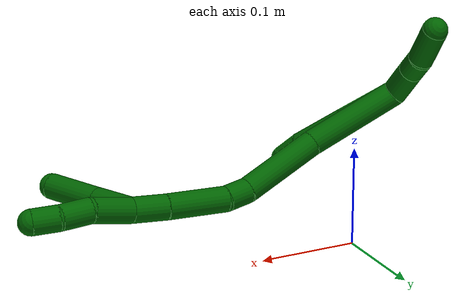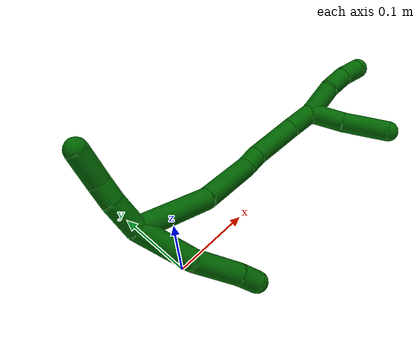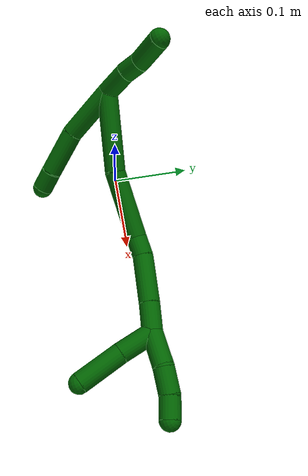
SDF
<sdf version="1.7">
 <world name="default">
  <model name="6">
   <static>0</static>
   <link name="6">
    <collision name="collision-cylinder-e_1_2_8">
     <pose>0.012563 -0.000265 -0.031586 3.1332 0.378534 3.0978</pose>
     <geometry><cylinder><radius>0.0125</radius><length>0.067988</length></cylinder></geometry>
     <surface>
      <friction><ode><mu>1.16</mu><mu2>1.16</mu2><slip1>0</slip1><slip2>0</slip2></ode></friction>
      <contact><ode><kp>1e+06</kp><kd>1</kd><max_vel>0</max_vel><min_depth>0.001</min_depth></ode></contact>
     </surface>
    </collision>
    <visual name="visual-cylinder-e_1_2_8">
     <pose>0.012563 -0.000265 -0.031586 3.1332 0.378534 3.0978</pose>
     <geometry><cylinder><radius>0.0125</radius><length>0.067988</length></cylinder></geometry>
     <material><ambient>0 0.392157 0.003922 1</ambient></material>
    </visual>
    <collision name="collision-cylinder-e_2_8_9">
     <pose>0.040498 0.002118 -0.086628 -3.02919 0.577274 -2.76707</pose>
     <geometry><cylinder><radius>0.0125</radius><length>0.056337</length></cylinder></geometry>
     <surface>
      <friction><ode><mu>1.16</mu><mu2>1.16</mu2><slip1>0</slip1><slip2>0</slip2></ode></friction>
      <contact><ode><kp>1e+06</kp><kd>1</kd><max_vel>0</max_vel><min_depth>0.001</min_depth></ode></contact>
     </surface>
    </collision>
    <visual name="visual-cylinder-e_2_8_9">
     <pose>0.040498 0.002118 -0.086628 -3.02919 0.577274 -2.76707</pose>
     <geometry><cylinder><radius>0.0125</radius><length>0.056337</length></cylinder></geometry>
     <material><ambient>0 0.392157 0.003922 1</ambient></material>
    </visual>
    <collision name="collision-cylinder-e_3_9_6">
     <pose>0.061715 0.007098 -0.121272 -2.93602 0.472667 -2.33226</pose>
     <geometry><cylinder><radius>0.0125</radius><length>0.025675</length></cylinder></geometry>
     <surface>
      <friction><ode><mu>1.16</mu><mu2>1.16</mu2><slip1>0</slip1><slip2>0</slip2></ode></friction>
      <contact><ode><kp>1e+06</kp><kd>1</kd><max_vel>0</max_vel><min_depth>0.001</min_depth></ode></contact>
     </surface>
    </collision>
    <visual name="visual-cylinder-e_3_9_6">
     <pose>0.061715 0.007098 -0.121272 -2.93602 0.472667 -2.33226</pose>
     <geometry><cylinder><radius>0.0125</radius><length>0.025675</length></cylinder></geometry>
     <material><ambient>0 0.392157 0.003922 1</ambient></material>
    </visual>
    <collision name="collision-cylinder-e_1_2_10">
     <pose>-0.001428 -0.003268 0.01824 0.177294 -0.07693 -0.006841</pose>
     <geometry><cylinder><radius>0.0125</radius><length>0.037171</length></cylinder></geometry>
     <surface>
      <friction><ode><mu>1.16</mu><mu2>1.16</mu2><slip1>0</slip1><slip2>0</slip2></ode></friction>
      <contact><ode><kp>1e+06</kp><kd>1</kd><max_vel>0</max_vel><min_depth>0.001</min_depth></ode></contact>
     </surface>
    </collision>
    <visual name="visual-cylinder-e_1_2_10">
     <pose>-0.001428 -0.003268 0.01824 0.177294 -0.07693 -0.006841</pose>
     <geometry><cylinder><radius>0.0125</radius><length>0.037171</length></cylinder></geometry>
     <material><ambient>0 0.392157 0.003922 1</ambient></material>
    </visual>
    <collision name="collision-cylinder-e_2_10_11">
     <pose>-0.002523 -0.007283 0.047992 0.064749 0.02892 0.000937</pose>
     <geometry><cylinder><radius>0.0125</radius><length>0.023081</length></cylinder></geometry>
     <surface>
      <friction><ode><mu>1.16</mu><mu2>1.16</mu2><slip1>0</slip1><slip2>0</slip2></ode></friction>
      <contact><ode><kp>1e+06</kp><kd>1</kd><max_vel>0</max_vel><min_depth>0.001</min_depth></ode></contact>
     </surface>
    </collision>
    <visual name="visual-cylinder-e_2_10_11">
     <pose>-0.002523 -0.007283 0.047992 0.064749 0.02892 0.000937</pose>
     <geometry><cylinder><radius>0.0125</radius><length>0.023081</length></cylinder></geometry>
     <material><ambient>0 0.392157 0.003922 1</ambient></material>
    </visual>
    <collision name="collision-cylinder-e_3_11_5">
     <pose>-0.001963 -0.013675 0.078557 0.288071 0.011385 0.001651</pose>
     <geometry><cylinder><radius>0.0125</radius><length>0.039748</length></cylinder></geometry>
     <surface>
      <friction><ode><mu>1.16</mu><mu2>1.16</mu2><slip1>0</slip1><slip2>0</slip2></ode></friction>
      <contact><ode><kp>1e+06</kp><kd>1</kd><max_vel>0</max_vel><min_depth>0.001</min_depth></ode></contact>
     </surface>
    </collision>
    <visual name="visual-cylinder-e_3_11_5">
     <pose>-0.001963 -0.013675 0.078557 0.288071 0.011385 0.001651</pose>
     <geometry><cylinder><radius>0.0125</radius><length>0.039748</length></cylinder></geometry>
     <material><ambient>0 0.392157 0.003922 1</ambient></material>
    </visual>
    <collision name="collision-cylinder-e_1_2_12">
     <pose>0.042408 0.017812 -0.015675 -2.29247 1.0607 -1.82809</pose>
     <geometry><cylinder><radius>0.0125</radius><length>0.097188</length></cylinder></geometry>
     <surface>
      <friction><ode><mu>1.16</mu><mu2>1.16</mu2><slip1>0</slip1><slip2>0</slip2></ode></friction>
      <contact><ode><kp>1e+06</kp><kd>1</kd><max_vel>0</max_vel><min_depth>0.001</min_depth></ode></contact>
     </surface>
    </collision>
    <visual name="visual-cylinder-e_1_2_12">
     <pose>0.042408 0.017812 -0.015675 -2.29247 1.0607 -1.82809</pose>
     <geometry><cylinder><radius>0.0125</radius><length>0.097188</length></cylinder></geometry>
     <material><ambient>0 0.392157 0.003922 1</ambient></material>
    </visual>
    <collision name="collision-cylinder-e_2_12_13">
     <pose>0.121045 0.055508 -0.037083 -1.85151 1.05181 -1.31415</pose>
     <geometry><cylinder><radius>0.0125</radius><length>0.083445</length></cylinder></geometry>
     <surface>
      <friction><ode><mu>1.16</mu><mu2>1.16</mu2><slip1>0</slip1><slip2>0</slip2></ode></friction>
      <contact><ode><kp>1e+06</kp><kd>1</kd><max_vel>0</max_vel><min_depth>0.001</min_depth></ode></contact>
     </surface>
    </collision>
    <visual name="visual-cylinder-e_2_12_13">
     <pose>0.121045 0.055508 -0.037083 -1.85151 1.05181 -1.31415</pose>
     <geometry><cylinder><radius>0.0125</radius><length>0.083445</length></cylinder></geometry>
     <material><ambient>0 0.392157 0.003922 1</ambient></material>
    </visual>
    <collision name="collision-cylinder-e_3_13_14">
     <pose>0.169003 0.079045 -0.042572 -1.50389 1.26823 -1.205</pose>
     <geometry><cylinder><radius>0.0125</radius><length>0.024575</length></cylinder></geometry>
     <surface>
      <friction><ode><mu>1.16</mu><mu2>1.16</mu2><slip1>0</slip1><slip2>0</slip2></ode></friction>
      <contact><ode><kp>1e+06</kp><kd>1</kd><max_vel>0</max_vel><min_depth>0.001</min_depth></ode></contact>
     </surface>
    </collision>
    <visual name="visual-cylinder-e_3_13_14">
     <pose>0.169003 0.079045 -0.042572 -1.50389 1.26823 -1.205</pose>
     <geometry><cylinder><radius>0.0125</radius><length>0.024575</length></cylinder></geometry>
     <material><ambient>0 0.392157 0.003922 1</ambient></material>
    </visual>
    <collision name="collision-cylinder-e_4_14_15">
     <pose>0.210682 0.084256 -0.043431 -2.18757 1.50711 -2.13464</pose>
     <geometry><cylinder><radius>0.0125</radius><length>0.060021</length></cylinder></geometry>
     <surface>
      <friction><ode><mu>1.16</mu><mu2>1.16</mu2><slip1>0</slip1><slip2>0</slip2></ode></friction>
      <contact><ode><kp>1e+06</kp><kd>1</kd><max_vel>0</max_vel><min_depth>0.001</min_depth></ode></contact>
     </surface>
    </collision>
    <visual name="visual-cylinder-e_4_14_15">
     <pose>0.210682 0.084256 -0.043431 -2.18757 1.50711 -2.13464</pose>
     <geometry><cylinder><radius>0.0125</radius><length>0.060021</length></cylinder></geometry>
     <material><ambient>0 0.392157 0.003922 1</ambient></material>
    </visual>
    <collision name="collision-cylinder-e_5_15_1">
     <pose>0.257996 0.085948 -0.045372 -2.98273 1.52208 -2.97483</pose>
     <geometry><cylinder><radius>0.0125</radius><length>0.034771</length></cylinder></geometry>
     <surface>
      <friction><ode><mu>1.16</mu><mu2>1.16</mu2><slip1>0</slip1><slip2>0</slip2></ode></friction>
      <contact><ode><kp>1e+06</kp><kd>1</kd><max_vel>0</max_vel><min_depth>0.001</min_depth></ode></contact>
     </surface>
    </collision>
    <visual name="visual-cylinder-e_5_15_1">
     <pose>0.257996 0.085948 -0.045372 -2.98273 1.52208 -2.97483</pose>
     <geometry><cylinder><radius>0.0125</radius><length>0.034771</length></cylinder></geometry>
     <material><ambient>0 0.392157 0.003922 1</ambient></material>
    </visual>
    <collision name="collision-cylinder-e_1_1_16">
     <pose>0.284839 0.074354 -0.061743 2.49492 0.453152 1.20521</pose>
     <geometry><cylinder><radius>0.0125</radius><length>0.0433</length></cylinder></geometry>
     <surface>
      <friction><ode><mu>1.16</mu><mu2>1.16</mu2><slip1>0</slip1><slip2>0</slip2></ode></friction>
      <contact><ode><kp>1e+06</kp><kd>1</kd><max_vel>0</max_vel><min_depth>0.001</min_depth></ode></contact>
     </surface>
    </collision>
    <visual name="visual-cylinder-e_1_1_16">
     <pose>0.284839 0.074354 -0.061743 2.49492 0.453152 1.20521</pose>
     <geometry><cylinder><radius>0.0125</radius><length>0.0433</length></cylinder></geometry>
     <material><ambient>0 0.392157 0.003922 1</ambient></material>
    </visual>
    <collision name="collision-cylinder-e_2_16_4">
     <pose>0.30856 0.046973 -0.096143 2.44901 0.52635 1.28275</pose>
     <geometry><cylinder><radius>0.0125</radius><length>0.0567</length></cylinder></geometry>
     <surface>
      <friction><ode><mu>1.16</mu><mu2>1.16</mu2><slip1>0</slip1><slip2>0</slip2></ode></friction>
      <contact><ode><kp>1e+06</kp><kd>1</kd><max_vel>0</max_vel><min_depth>0.001</min_depth></ode></contact>
     </surface>
    </collision>
    <visual name="visual-cylinder-e_2_16_4">
     <pose>0.30856 0.046973 -0.096143 2.44901 0.52635 1.28275</pose>
     <geometry><cylinder><radius>0.0125</radius><length>0.0567</length></cylinder></geometry>
     <material><ambient>0 0.392157 0.003922 1</ambient></material>
    </visual>
    <collision name="collision-cylinder-e_1_1_17">
     <pose>0.296445 0.08638 -0.041913 -0.069315 1.36936 -0.056598</pose>
     <geometry><cylinder><radius>0.0125</radius><length>0.043038</length></cylinder></geometry>
     <surface>
      <friction><ode><mu>1.16</mu><mu2>1.16</mu2><slip1>0</slip1><slip2>0</slip2></ode></friction>
      <contact><ode><kp>1e+06</kp><kd>1</kd><max_vel>0</max_vel><min_depth>0.001</min_depth></ode></contact>
     </surface>
    </collision>
    <visual name="visual-cylinder-e_1_1_17">
     <pose>0.296445 0.08638 -0.041913 -0.069315 1.36936 -0.056598</pose>
     <geometry><cylinder><radius>0.0125</radius><length>0.043038</length></cylinder></geometry>
     <material><ambient>0 0.392157 0.003922 1</ambient></material>
    </visual>
    <collision name="collision-cylinder-e_2_17_18">
     <pose>0.332657 0.089157 -0.037917 -1.69092 1.40725 -1.52694</pose>
     <geometry><cylinder><radius>0.0125</radius><length>0.030667</length></cylinder></geometry>
     <surface>
      <friction><ode><mu>1.16</mu><mu2>1.16</mu2><slip1>0</slip1><slip2>0</slip2></ode></friction>
      <contact><ode><kp>1e+06</kp><kd>1</kd><max_vel>0</max_vel><min_depth>0.001</min_depth></ode></contact>
     </surface>
    </collision>
    <visual name="visual-cylinder-e_2_17_18">
     <pose>0.332657 0.089157 -0.037917 -1.69092 1.40725 -1.52694</pose>
     <geometry><cylinder><radius>0.0125</radius><length>0.030667</length></cylinder></geometry>
     <material><ambient>0 0.392157 0.003922 1</ambient></material>
    </visual>
    <collision name="collision-cylinder-e_3_18_3">
     <pose>0.360714 0.091938 -0.040593 -3.0149 1.38756 -2.98935</pose>
     <geometry><cylinder><radius>0.0125</radius><length>0.026295</length></cylinder></geometry>
     <surface>
      <friction><ode><mu>1.16</mu><mu2>1.16</mu2><slip1>0</slip1><slip2>0</slip2></ode></friction>
      <contact><ode><kp>1e+06</kp><kd>1</kd><max_vel>0</max_vel><min_depth>0.001</min_depth></ode></contact>
     </surface>
    </collision>
    <visual name="visual-cylinder-e_3_18_3">
     <pose>0.360714 0.091938 -0.040593 -3.0149 1.38756 -2.98935</pose>
     <geometry><cylinder><radius>0.0125</radius><length>0.026295</length></cylinder></geometry>
     <material><ambient>0 0.392157 0.003922 1</ambient></material>
    </visual>
    <collision name="collision-sphere-3">
     <pose>0.373641 0.092241 -0.042969 0 -0 0</pose>
     <geometry><sphere><radius>0.0125</radius></sphere></geometry>
     <surface>
      <friction><ode><mu>1.16</mu><mu2>1.16</mu2><slip1>0</slip1><slip2>0</slip2></ode></friction>
      <contact><ode><kp>1e+06</kp><kd>1</kd><max_vel>0</max_vel><min_depth>0.001</min_depth></ode></contact>
     </surface>
    </collision>
    <visual name="visual-sphere-3">
     <pose>0.373641 0.092241 -0.042969 0 -0 0</pose>
     <geometry><sphere><radius>0.0125</radius></sphere></geometry>
     <material><ambient>0 0.392157 0.003922 1</ambient></material>
    </visual>
    <collision name="collision-sphere-11">
     <pose>-0.002189 -0.008029 0.059503 0 -0 0</pose>
     <geometry><sphere><radius>0.0125</radius></sphere></geometry>
     <surface>
      <friction><ode><mu>1.16</mu><mu2>1.16</mu2><slip1>0</slip1><slip2>0</slip2></ode></friction>
      <contact><ode><kp>1e+06</kp><kd>1</kd><max_vel>0</max_vel><min_depth>0.001</min_depth></ode></contact>
     </surface>
    </collision>
    <visual name="visual-sphere-11">
     <pose>-0.002189 -0.008029 0.059503 0 -0 0</pose>
     <geometry><sphere><radius>0.0125</radius></sphere></geometry>
     <material><ambient>0 0.392157 0.003922 1</ambient></material>
    </visual>
    <collision name="collision-sphere-10">
     <pose>-0.002857 -0.006536 0.03648 0 -0 0</pose>
     <geometry><sphere><radius>0.0125</radius></sphere></geometry>
     <surface>
      <friction><ode><mu>1.16</mu><mu2>1.16</mu2><slip1>0</slip1><slip2>0</slip2></ode></friction>
      <contact><ode><kp>1e+06</kp><kd>1</kd><max_vel>0</max_vel><min_depth>0.001</min_depth></ode></contact>
     </surface>
    </collision>
    <visual name="visual-sphere-10">
     <pose>-0.002857 -0.006536 0.03648 0 -0 0</pose>
     <geometry><sphere><radius>0.0125</radius></sphere></geometry>
     <material><ambient>0 0.392157 0.003922 1</ambient></material>
    </visual>
    <collision name="collision-sphere-6">
     <pose>0.06756 0.009432 -0.132461 0 -0 0</pose>
     <geometry><sphere><radius>0.0125</radius></sphere></geometry>
     <surface>
      <friction><ode><mu>1.16</mu><mu2>1.16</mu2><slip1>0</slip1><slip2>0</slip2></ode></friction>
      <contact><ode><kp>1e+06</kp><kd>1</kd><max_vel>0</max_vel><min_depth>0.001</min_depth></ode></contact>
     </surface>
    </collision>
    <visual name="visual-sphere-6">
     <pose>0.06756 0.009432 -0.132461 0 -0 0</pose>
     <geometry><sphere><radius>0.0125</radius></sphere></geometry>
     <material><ambient>0 0.392157 0.003922 1</ambient></material>
    </visual>
    <collision name="collision-sphere-9">
     <pose>0.055871 0.004765 -0.110082 0 -0 0</pose>
     <geometry><sphere><radius>0.0125</radius></sphere></geometry>
     <surface>
      <friction><ode><mu>1.16</mu><mu2>1.16</mu2><slip1>0</slip1><slip2>0</slip2></ode></friction>
      <contact><ode><kp>1e+06</kp><kd>1</kd><max_vel>0</max_vel><min_depth>0.001</min_depth></ode></contact>
     </surface>
    </collision>
    <visual name="visual-sphere-9">
     <pose>0.055871 0.004765 -0.110082 0 -0 0</pose>
     <geometry><sphere><radius>0.0125</radius></sphere></geometry>
     <material><ambient>0 0.392157 0.003922 1</ambient></material>
    </visual>
    <collision name="collision-sphere-2">
     <geometry><sphere><radius>0.0125</radius></sphere></geometry>
     <surface>
      <friction><ode><mu>1.16</mu><mu2>1.16</mu2><slip1>0</slip1><slip2>0</slip2></ode></friction>
      <contact><ode><kp>1e+06</kp><kd>1</kd><max_vel>0</max_vel><min_depth>0.001</min_depth></ode></contact>
     </surface>
    </collision>
    <visual name="visual-sphere-2">
     <geometry><sphere><radius>0.0125</radius></sphere></geometry>
     <material><ambient>0 0.392157 0.003922 1</ambient></material>
    </visual>
    <collision name="collision-sphere-8">
     <pose>0.025126 -0.00053 -0.063173 0 -0 0</pose>
     <geometry><sphere><radius>0.0125</radius></sphere></geometry>
     <surface>
      <friction><ode><mu>1.16</mu><mu2>1.16</mu2><slip1>0</slip1><slip2>0</slip2></ode></friction>
      <contact><ode><kp>1e+06</kp><kd>1</kd><max_vel>0</max_vel><min_depth>0.001</min_depth></ode></contact>
     </surface>
    </collision>
    <visual name="visual-sphere-8">
     <pose>0.025126 -0.00053 -0.063173 0 -0 0</pose>
     <geometry><sphere><radius>0.0125</radius></sphere></geometry>
     <material><ambient>0 0.392157 0.003922 1</ambient></material>
    </visual>
    <collision name="collision-sphere-5">
     <pose>-0.001737 -0.019321 0.097611 0 -0 0</pose>
     <geometry><sphere><radius>0.0125</radius></sphere></geometry>
     <surface>
      <friction><ode><mu>1.16</mu><mu2>1.16</mu2><slip1>0</slip1><slip2>0</slip2></ode></friction>
      <contact><ode><kp>1e+06</kp><kd>1</kd><max_vel>0</max_vel><min_depth>0.001</min_depth></ode></contact>
     </surface>
    </collision>
    <visual name="visual-sphere-5">
     <pose>-0.001737 -0.019321 0.097611 0 -0 0</pose>
     <geometry><sphere><radius>0.0125</radius></sphere></geometry>
     <material><ambient>0 0.392157 0.003922 1</ambient></material>
    </visual>
    <collision name="collision-sphere-12">
     <pose>0.084816 0.035623 -0.03135 0 -0 0</pose>
     <geometry><sphere><radius>0.0125</radius></sphere></geometry>
     <surface>
      <friction><ode><mu>1.16</mu><mu2>1.16</mu2><slip1>0</slip1><slip2>0</slip2></ode></friction>
      <contact><ode><kp>1e+06</kp><kd>1</kd><max_vel>0</max_vel><min_depth>0.001</min_depth></ode></contact>
     </surface>
    </collision>
    <visual name="visual-sphere-12">
     <pose>0.084816 0.035623 -0.03135 0 -0 0</pose>
     <geometry><sphere><radius>0.0125</radius></sphere></geometry>
     <material><ambient>0 0.392157 0.003922 1</ambient></material>
    </visual>
    <collision name="collision-sphere-13">
     <pose>0.157273 0.075392 -0.042816 0 -0 0</pose>
     <geometry><sphere><radius>0.0125</radius></sphere></geometry>
     <surface>
      <friction><ode><mu>1.16</mu><mu2>1.16</mu2><slip1>0</slip1><slip2>0</slip2></ode></friction>
      <contact><ode><kp>1e+06</kp><kd>1</kd><max_vel>0</max_vel><min_depth>0.001</min_depth></ode></contact>
     </surface>
    </collision>
    <visual name="visual-sphere-13">
     <pose>0.157273 0.075392 -0.042816 0 -0 0</pose>
     <geometry><sphere><radius>0.0125</radius></sphere></geometry>
     <material><ambient>0 0.392157 0.003922 1</ambient></material>
    </visual>
    <collision name="collision-sphere-14">
     <pose>0.180732 0.082698 -0.042327 0 -0 0</pose>
     <geometry><sphere><radius>0.0125</radius></sphere></geometry>
     <surface>
      <friction><ode><mu>1.16</mu><mu2>1.16</mu2><slip1>0</slip1><slip2>0</slip2></ode></friction>
      <contact><ode><kp>1e+06</kp><kd>1</kd><max_vel>0</max_vel><min_depth>0.001</min_depth></ode></contact>
     </surface>
    </collision>
    <visual name="visual-sphere-14">
     <pose>0.180732 0.082698 -0.042327 0 -0 0</pose>
     <geometry><sphere><radius>0.0125</radius></sphere></geometry>
     <material><ambient>0 0.392157 0.003922 1</ambient></material>
    </visual>
    <collision name="collision-sphere-15">
     <pose>0.240631 0.085814 -0.044536 0 -0 0</pose>
     <geometry><sphere><radius>0.0125</radius></sphere></geometry>
     <surface>
      <friction><ode><mu>1.16</mu><mu2>1.16</mu2><slip1>0</slip1><slip2>0</slip2></ode></friction>
      <contact><ode><kp>1e+06</kp><kd>1</kd><max_vel>0</max_vel><min_depth>0.001</min_depth></ode></contact>
     </surface>
    </collision>
    <visual name="visual-sphere-15">
     <pose>0.240631 0.085814 -0.044536 0 -0 0</pose>
     <geometry><sphere><radius>0.0125</radius></sphere></geometry>
     <material><ambient>0 0.392157 0.003922 1</ambient></material>
    </visual>
    <collision name="collision-sphere-1">
     <pose>0.275361 0.086082 -0.046208 0 -0 0</pose>
     <geometry><sphere><radius>0.0125</radius></sphere></geometry>
     <surface>
      <friction><ode><mu>1.16</mu><mu2>1.16</mu2><slip1>0</slip1><slip2>0</slip2></ode></friction>
      <contact><ode><kp>1e+06</kp><kd>1</kd><max_vel>0</max_vel><min_depth>0.001</min_depth></ode></contact>
     </surface>
    </collision>
    <visual name="visual-sphere-1">
     <pose>0.275361 0.086082 -0.046208 0 -0 0</pose>
     <geometry><sphere><radius>0.0125</radius></sphere></geometry>
     <material><ambient>0 0.392157 0.003922 1</ambient></material>
    </visual>
    <collision name="collision-sphere-18">
     <pose>0.347786 0.091636 -0.038216 0 -0 0</pose>
     <geometry><sphere><radius>0.0125</radius></sphere></geometry>
     <surface>
      <friction><ode><mu>1.16</mu><mu2>1.16</mu2><slip1>0</slip1><slip2>0</slip2></ode></friction>
      <contact><ode><kp>1e+06</kp><kd>1</kd><max_vel>0</max_vel><min_depth>0.001</min_depth></ode></contact>
     </surface>
    </collision>
    <visual name="visual-sphere-18">
     <pose>0.347786 0.091636 -0.038216 0 -0 0</pose>
     <geometry><sphere><radius>0.0125</radius></sphere></geometry>
     <material><ambient>0 0.392157 0.003922 1</ambient></material>
    </visual>
    <collision name="collision-sphere-16">
     <pose>0.294318 0.062625 -0.077278 0 -0 0</pose>
     <geometry><sphere><radius>0.0125</radius></sphere></geometry>
     <surface>
      <friction><ode><mu>1.16</mu><mu2>1.16</mu2><slip1>0</slip1><slip2>0</slip2></ode></friction>
      <contact><ode><kp>1e+06</kp><kd>1</kd><max_vel>0</max_vel><min_depth>0.001</min_depth></ode></contact>
     </surface>
    </collision>
    <visual name="visual-sphere-16">
     <pose>0.294318 0.062625 -0.077278 0 -0 0</pose>
     <geometry><sphere><radius>0.0125</radius></sphere></geometry>
     <material><ambient>0 0.392157 0.003922 1</ambient></material>
    </visual>
    <collision name="collision-sphere-4">
     <pose>0.322802 0.031322 -0.115008 0 -0 0</pose>
     <geometry><sphere><radius>0.0125</radius></sphere></geometry>
     <surface>
      <friction><ode><mu>1.16</mu><mu2>1.16</mu2><slip1>0</slip1><slip2>0</slip2></ode></friction>
      <contact><ode><kp>1e+06</kp><kd>1</kd><max_vel>0</max_vel><min_depth>0.001</min_depth></ode></contact>
     </surface>
    </collision>
    <visual name="visual-sphere-4">
     <pose>0.322802 0.031322 -0.115008 0 -0 0</pose>
     <geometry><sphere><radius>0.0125</radius></sphere></geometry>
     <material><ambient>0 0.392157 0.003922 1</ambient></material>
    </visual>
    <collision name="collision-sphere-17">
     <pose>0.317528 0.086678 -0.037618 0 -0 0</pose>
     <geometry><sphere><radius>0.0125</radius></sphere></geometry>
     <surface>
      <friction><ode><mu>1.16</mu><mu2>1.16</mu2><slip1>0</slip1><slip2>0</slip2></ode></friction>
      <contact><ode><kp>1e+06</kp><kd>1</kd><max_vel>0</max_vel><min_depth>0.001</min_depth></ode></contact>
     </surface>
    </collision>
    <visual name="visual-sphere-17">
     <pose>0.317528 0.086678 -0.037618 0 -0 0</pose>
     <geometry><sphere><radius>0.0125</radius></sphere></geometry>
     <material><ambient>0 0.392157 0.003922 1</ambient></material>
    </visual>
    <inertial>
     <pose>0.142395 0.040738 -0.036321 0 -0 0</pose>
     <mass>0.75</mass>
     <inertia>
      <ixx>-3.4e-05</ixx>
      <ixy>0</ixy>
      <ixz>0</ixz>
      <iyy>0.000159</iyy>
      <iyz>0</iyz>
      <izz>-0.000242</izz>
     </inertia>
    </inertial>
   </link>
   <pose>-0.044248 -0.001688 0.150493 -0.841823 -0.08998 -0.057753</pose>
  </model>
 </world>
</sdf>
